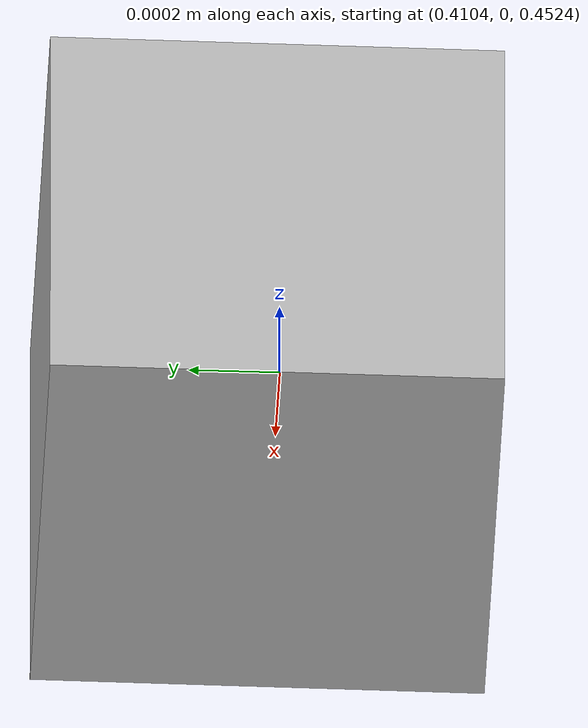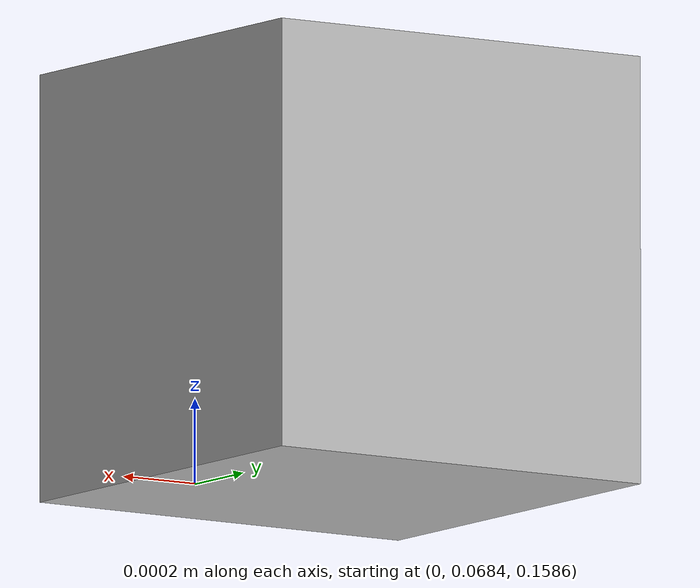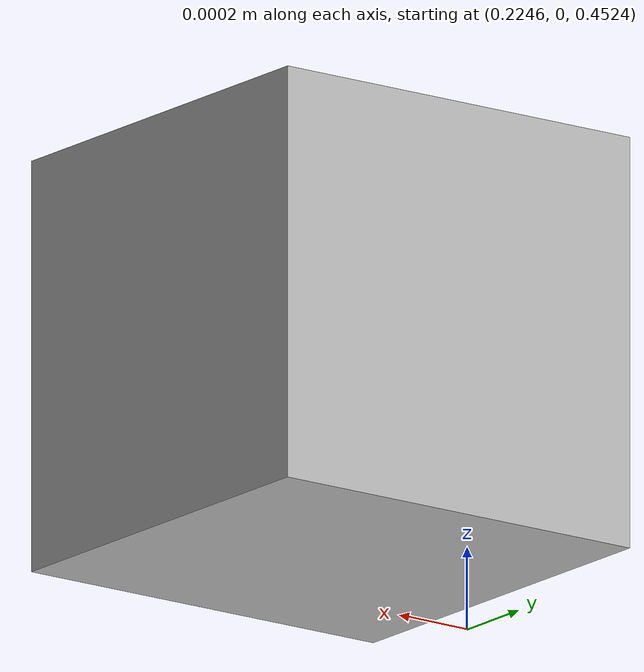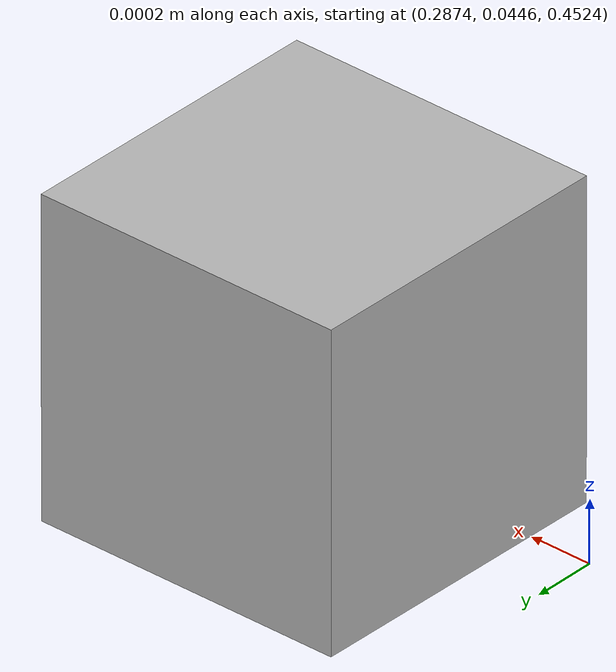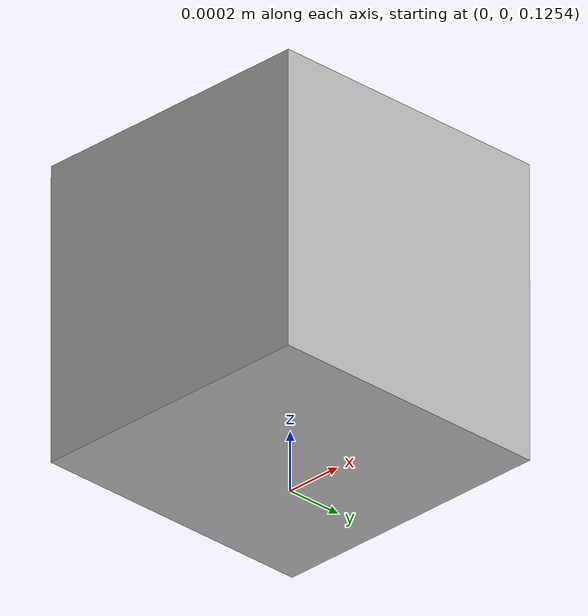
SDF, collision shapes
<?xml version="1.0" ?>
<sdf version="1.7">
  <model name="open_manipulator_p">
  <pose>0.0 0.0 0.0 0.0 0.0 0.0</pose>

    <link name="world"/>

    <joint name="world_fixed" type="fixed">
      <pose relative_to="world">0 0 0 0 -0 0</pose>
      <parent>world</parent>
      <child>link1</child>
    </joint>

    <link name="link1">
      <pose relative_to="world_fixed">0 0 0 0 -0 0</pose>
      <inertial>
        <pose>0 -0.000177 -0.001003 0 -0 0</pose>
        <mass>0.943606</mass>
        <inertia>
          <ixx>0.001</ixx>
          <ixy>0</ixy>
          <ixz>0</ixz>
          <iyy>0.001</iyy>
          <iyz>0</iyz>
          <izz>0.001</izz>
        </inertia>
      </inertial>
      <collision name="link1_collision">
        <pose>0 0 0 0 -0 0</pose>
        <geometry>
          <box>
            <size>0.001 0.001 0.001</size>
          </box>
        </geometry>
        <surface>
          <contact>
            <ode>
              <kp>1e+06</kp>
              <kd>100</kd>
              <max_vel>1</max_vel>
              <min_depth>0.001</min_depth>
            </ode>
          </contact>
          <friction>
            <ode>
              <mu>30</mu>
              <mu2>30</mu2>
            </ode>
          </friction>
        </surface>
      </collision>
      <visual name="link1_visual">
        <pose>0 0 0 0 -0 0</pose>
        <geometry>
          <mesh>
            <scale>0.001 0.001 0.001</scale>
            <uri>model://open_manipulator_p/meshes/link1.stl</uri>
          </mesh>
        </geometry>
        <material>grey</material>
      </visual>
    </link>

    <joint name="joint1" type="revolute">
      <pose relative_to="link1">0 0 0.126 0 -0 0</pose>
      <parent>link1</parent>
      <child>link2</child>
      <axis>
        <xyz>0 0 1</xyz>
        <limit>
          <lower>-1.5708</lower>
          <upper>1.5708</upper>
          <effort>1000</effort>
          <velocity>6.5</velocity>
        </limit>
        <dynamics>
          <damping>0.7</damping>
          <friction>0</friction>
          <spring_reference>0</spring_reference>
          <spring_stiffness>0</spring_stiffness>
        </dynamics>
      </axis>
    </joint>

    <link name="link2">
      <pose relative_to="joint1">0 0 0 0 -0 0</pose>
      <inertial>
        <pose>0 -0.000177 -0.001003 0 -0 0</pose>
        <mass>0.943606</mass>
        <inertia>
          <ixx>0.0015694</ixx>
          <ixy>0</ixy>
          <ixz>0</ixz>
          <iyy>0.000455934</iyy>
          <iyz>6.45818e-09</iyz>
          <izz>0.00155618</izz>
        </inertia>
      </inertial>
      <collision name="link2_collision">
        <pose>0 0 0 0 -0 0</pose>
        <geometry>
          <box>
            <size>0.001 0.001 0.001</size>
          </box>
        </geometry>
        <surface>
          <contact>
            <ode>
              <kp>1e+06</kp>
              <kd>100</kd>
              <max_vel>1</max_vel>
              <min_depth>0.001</min_depth>
            </ode>
          </contact>
          <friction>
            <ode>
              <mu>30</mu>
              <mu2>30</mu2>
            </ode>
          </friction>
        </surface>
      </collision>
      <visual name="link2_visual">
        <pose>0 0 0 0 -0 0</pose>
        <geometry>
          <mesh>
            <scale>0.001 0.001 0.001</scale>
            <uri>model://open_manipulator_p/meshes/link2.stl</uri>
          </mesh>
        </geometry>
        <material>grey</material>
      </visual>
    </link>

    <joint name="joint2" type="revolute">
      <pose relative_to="link2">0 0.069 0.033 0 -0 0</pose>
      <parent>link2</parent>
      <child>link3</child>
      <axis>
        <xyz>0 1 0</xyz>
        <limit>
          <lower>-1.5708</lower>
          <upper>1.5708</upper>
          <effort>1000</effort>
          <velocity>6.5</velocity>
        </limit>
        <dynamics>
          <damping>0.7</damping>
          <friction>0</friction>
          <spring_reference>0</spring_reference>
          <spring_stiffness>0</spring_stiffness>
        </dynamics>
      </axis>
    </joint>

    <link name="link3">
      <pose relative_to="joint2">0 0 0 0 -0 0</pose>
      <inertial>
        <pose>0.015752 -0.000221 0.199137 0 -0 0</pose>
        <mass>1.38259</mass>
        <inertia>
          <ixx>0.0676304</ixx>
          <ixy>-1.99886e-05</ixy>
          <ixz>-0.00574776</ixz>
          <iyy>0.067208</iyy>
          <iyz>7.48232e-05</iyz>
          <izz>0.00260314</izz>
        </inertia>
      </inertial>
      <collision name="link3_collision">
        <pose>0 0 0 0 -0 0</pose>
        <geometry>
          <box>
            <size>0.001 0.001 0.001</size>
          </box>
        </geometry>
        <surface>
          <contact>
            <ode>
              <kp>1e+06</kp>
              <kd>100</kd>
              <max_vel>1</max_vel>
              <min_depth>0.001</min_depth>
            </ode>
          </contact>
          <friction>
            <ode>
              <mu>30</mu>
              <mu2>30</mu2>
            </ode>
          </friction>
        </surface>
      </collision>
      <visual name="link3_visual">
        <pose>0 0 0 0 -0 0</pose>
        <geometry>
          <mesh>
            <scale>0.001 0.001 0.001</scale>
            <uri>model://open_manipulator_p/meshes/link3.stl</uri>
          </mesh>
        </geometry>
        <material>grey</material>
      </visual>
    </link>

    <joint name="joint3" type="revolute">
      <pose relative_to="link3">0.03 -0.0115 0.264 0 -0 0</pose>
      <parent>link3</parent>
      <child>link4</child>
      <axis>
        <xyz>0 1 0</xyz>
        <limit>
          <lower>-1.5708</lower>
          <upper>1.5708</upper>
          <effort>1000</effort>
          <velocity>6.5</velocity>
        </limit>
        <dynamics>
          <damping>0.7</damping>
          <friction>0</friction>
          <spring_reference>0</spring_reference>
          <spring_stiffness>0</spring_stiffness>
        </dynamics>
      </axis>
    </joint>

    <link name="link4">
      <pose relative_to="joint3">0 0 0 0 -0 0</pose>
      <inertial>
        <pose>0.000304 4.2e-05 0.380747 0 -0 0</pose>
        <mass>1.2127</mass>
        <inertia>
          <ixx>0.179854</ixx>
          <ixy>-9.94175e-07</ixy>
          <ixz>-8.15644e-05</ixz>
          <iyy>0.179487</iyy>
          <iyz>-1.77059e-05</iyz>
          <izz>0.00114221</izz>
        </inertia>
      </inertial>
      <collision name="link4_collision">
        <pose>0 0 0 0 -0 0</pose>
        <geometry>
          <box>
            <size>0.001 0.001 0.001</size>
          </box>
        </geometry>
        <surface>
          <contact>
            <ode>
              <kp>1e+06</kp>
              <kd>100</kd>
              <max_vel>1</max_vel>
              <min_depth>0.001</min_depth>
            </ode>
          </contact>
          <friction>
            <ode>
              <mu>30</mu>
              <mu2>30</mu2>
            </ode>
          </friction>
        </surface>
      </collision>
      <visual name="link4_visual">
        <pose>0 0 0 0 -0 0</pose>
        <geometry>
          <mesh>
            <scale>0.001 0.001 0.001</scale>
            <uri>model://open_manipulator_p/meshes/link4.stl</uri>
          </mesh>
        </geometry>
        <material>grey</material>
      </visual>
    </link>

    <joint name="joint4" type="revolute">
      <pose relative_to="link4">0.195 -0.0575 0.03 0 -0 0</pose>
      <parent>link4</parent>
      <child>link5</child>
      <axis>
        <xyz>1 0 0</xyz>
        <limit>
          <lower>-1.5708</lower>
          <upper>1.5708</upper>
          <effort>1000</effort>
          <velocity>6.5</velocity>
        </limit>
        <dynamics>
          <damping>0.7</damping>
          <friction>0</friction>
          <spring_reference>0</spring_reference>
          <spring_stiffness>0</spring_stiffness>
        </dynamics>
      </axis>
    </joint>

    <link name="link5">
      <pose relative_to="joint4">0 0 0 0 -0 0</pose>
      <inertial>
        <pose>-2e-06 -0.002229 0.513872 0 -0 0</pose>
        <mass>0.466355</mass>
        <inertia>
          <ixx>0.123577</ixx>
          <ixy>-1.94653e-09</ixy>
          <ixz>5.12286e-07</ixz>
          <iyy>0.123396</iyy>
          <iyz>0.000537697</iyz>
          <izz>0.000332169</izz>
        </inertia>
      </inertial>
      <collision name="link5_collision">
        <pose>0 0 0 0 -0 0</pose>
        <geometry>
          <box>
            <size>0.001 0.001 0.001</size>
          </box>
        </geometry>
        <surface>
          <contact>
            <ode>
              <kp>1e+06</kp>
              <kd>100</kd>
              <max_vel>1</max_vel>
              <min_depth>0.001</min_depth>
            </ode>
          </contact>
          <friction>
            <ode>
              <mu>30</mu>
              <mu2>30</mu2>
            </ode>
          </friction>
        </surface>
      </collision>
      <visual name="link5_visual">
        <pose>0 0 0 0 -0 0</pose>
        <geometry>
          <mesh>
            <scale>0.001 0.001 0.001</scale>
            <uri>model://open_manipulator_p/meshes/link5.stl</uri>
          </mesh>
        </geometry>
        <material>grey</material>
      </visual>
    </link>

    <joint name="joint5" type="revolute">
      <pose relative_to="link5">0.063 0.045 0 0 -0 0</pose>
      <parent>link5</parent>
      <child>link6</child>
      <axis>
        <xyz>0 1 0</xyz>
        <limit>
          <lower>-1.5708</lower>
          <upper>1.5708</upper>
          <effort>1000</effort>
          <velocity>6.5</velocity>
        </limit>
        <dynamics>
          <damping>0.7</damping>
          <friction>0</friction>
          <spring_reference>0</spring_reference>
          <spring_stiffness>0</spring_stiffness>
        </dynamics>
      </axis>
    </joint>

    <link name="link6">
      <pose relative_to="joint5">0 0 0 0 -0 0</pose>
      <inertial>
        <pose>-2e-06 0.00018 0.590283 0 -0 0</pose>
        <mass>0.425616</mass>
        <inertia>
          <ixx>0.148813</ixx>
          <ixy>0</ixy>
          <ixz>5.34353e-07</ixz>
          <iyy>0.148727</iyy>
          <iyz>-4.37088e-05</iyz>
          <izz>0.000210401</izz>
        </inertia>
      </inertial>
      <collision name="link6_collision">
        <pose>0 0 0 0 -0 0</pose>
        <geometry>
          <box>
            <size>0.001 0.001 0.001</size>
          </box>
        </geometry>
        <surface>
          <contact>
            <ode>
              <kp>1e+06</kp>
              <kd>100</kd>
              <max_vel>1</max_vel>
              <min_depth>0.001</min_depth>
            </ode>
          </contact>
          <friction>
            <ode>
              <mu>30</mu>
              <mu2>30</mu2>
            </ode>
          </friction>
        </surface>
      </collision>
      <visual name="link6_visual">
        <pose>0 0 0 0 -0 0</pose>
        <geometry>
          <mesh>
            <scale>0.001 0.001 0.001</scale>
            <uri>model://open_manipulator_p/meshes/link6.stl</uri>
          </mesh>
        </geometry>
        <material>grey</material>
      </visual>
    </link>

    <joint name="joint6" type="revolute">
      <pose relative_to="link6">0.123 -0.045 0 0 -0 0</pose>
      <parent>link6</parent>
      <child>end_link</child>
      <axis>
        <xyz>1 0 0</xyz>
        <limit>
          <lower>-1.5708</lower>
          <upper>1.5708</upper>
          <effort>1000</effort>
          <velocity>6.5</velocity>
        </limit>
        <dynamics>
          <damping>0.7</damping>
          <friction>0</friction>
          <spring_reference>0</spring_reference>
          <spring_stiffness>0</spring_stiffness>
        </dynamics>
      </axis>
    </joint>

    <link name="end_link">
      <pose relative_to="joint6">0 0 0 0 -0 0</pose>
      <inertial>
        <pose>0.00337 0 0 0 -0 0</pose>
        <mass>0.01919</mass>
        <inertia>
          <ixx>0.000125</ixx>
          <ixy>0</ixy>
          <ixz>0</ixz>
          <iyy>0.000125</iyy>
          <iyz>0</iyz>
          <izz>0.000125</izz>
        </inertia>
      </inertial>
      <collision name="end_link_collision">
        <pose>0 0 0 0 -0 0</pose>
        <geometry>
          <box>
            <size>0.001 0.001 0.001</size>
          </box>
        </geometry>
        <surface>
          <contact>
            <ode>
              <kp>1e+06</kp>
              <kd>100</kd>
              <max_vel>1</max_vel>
              <min_depth>0.001</min_depth>
            </ode>
          </contact>
          <friction>
            <ode>
              <mu>30</mu>
              <mu2>30</mu2>
            </ode>
          </friction>
        </surface>
      </collision>
      <visual name="end_link_visual">
        <pose>0 0 0 0 -0 0</pose>
        <geometry>
          <mesh>
            <scale>0.001 0.001 0.001</scale>
            <uri>model://open_manipulator_p/meshes/end_link.stl</uri>
          </mesh>
        </geometry>
        <material>grey</material>
      </visual>
    </link>

    <static>0</static>
    <plugin name="gazebo_ros_control" filename="libgazebo_ros_control.so">
      <robotSimType>gazebo_ros_control/DefaultRobotHWSim</robotSimType>
    </plugin>
  </model>
</sdf>
